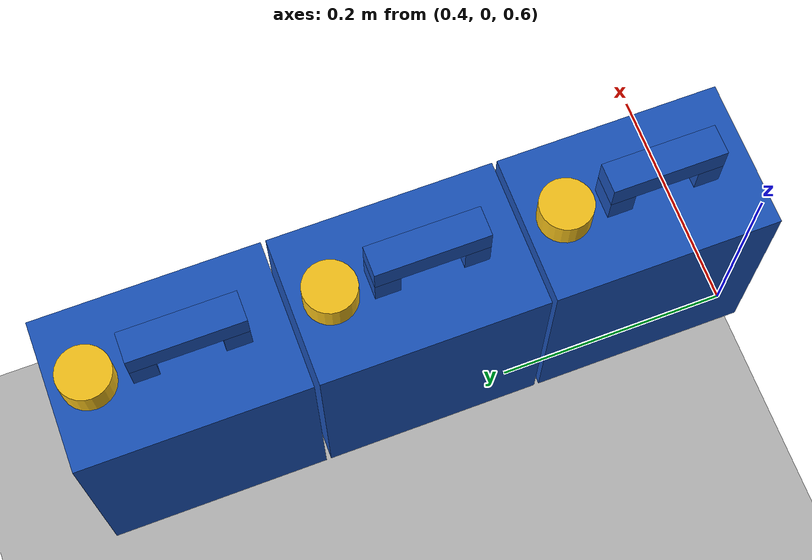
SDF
<sdf version="1.8">
 <world name="moz1_jerrycan">
  <model name="ground_plane">
   <static>true</static>
   <link name="link">
    <collision name="c"><geometry><plane><normal>0 0 1</normal><size>100 100</size></plane></geometry></collision>
    <visual name="v">
     <geometry><plane><normal>0 0 1</normal><size>100 100</size></plane></geometry>
     <material><ambient>0.7 0.7 0.7 1</ambient><diffuse>0.7 0.7 0.7 1</diffuse></material>
    </visual>
   </link>
  </model>
  <model name="jerrycan_left_1">
   <pose>0.4330 0.0920 0.6300 0 0 0</pose>
   <link name="link">
    <inertial>
     <pose>0.0000 0.0000 0.1200 0 0 0</pose>
     <mass>4.200</mass>
     <inertia><ixx>0.03150</ixx><iyy>0.02520</iyy><izz>0.01638</izz><ixy>0</ixy><ixz>0</ixz><iyz>0</iyz></inertia>
    </inertial>
    <visual name="body">
     <pose>0.0000 0.0000 0.0975 0 0 0</pose>
     <geometry><box><size>0.1200 0.1800 0.1950</size></box></geometry>
     <material><ambient>0.10 0.32 0.72 1</ambient><diffuse>0.10 0.32 0.72 1</diffuse></material>
    </visual>
    <collision name="body_c">
     <pose>0.0000 0.0000 0.0975 0 0 0</pose>
     <geometry><box><size>0.1200 0.1800 0.1950</size></box></geometry>
     <surface><friction><ode><mu>0.8</mu><mu2>0.8</mu2></ode></friction></surface>
    </collision>
    <visual name="bar">
     <pose>0.0000 -0.0150 0.2290 0 0 0</pose>
     <geometry><box><size>0.0240 0.0900 0.0220</size></box></geometry>
     <material><ambient>0.10 0.32 0.72 1</ambient><diffuse>0.10 0.32 0.72 1</diffuse></material>
    </visual>
    <visual name="post_a">
     <pose>0.0000 -0.0500 0.2065 0 0 0</pose>
     <geometry><box><size>0.0240 0.0200 0.0230</size></box></geometry>
     <material><ambient>0.10 0.32 0.72 1</ambient><diffuse>0.10 0.32 0.72 1</diffuse></material>
    </visual>
    <visual name="post_b">
     <pose>0.0000 0.0200 0.2065 0 0 0</pose>
     <geometry><box><size>0.0240 0.0200 0.0230</size></box></geometry>
     <material><ambient>0.10 0.32 0.72 1</ambient><diffuse>0.10 0.32 0.72 1</diffuse></material>
    </visual>
    <visual name="cap">
     <pose>0.0000 0.0600 0.2070 0 0 0</pose>
     <geometry><cylinder><radius>0.021</radius><length>0.024</length></cylinder></geometry>
     <material><ambient>0.95 0.75 0.10 1</ambient><diffuse>0.95 0.75 0.10 1</diffuse></material>
    </visual>
   </link>
  </model>
  <model name="jerrycan_left_2">
   <pose>0.4330 0.2760 0.6300 0 0 0</pose>
   <link name="link">
    <inertial>
     <pose>0.0000 0.0000 0.1200 0 0 0</pose>
     <mass>4.200</mass>
     <inertia><ixx>0.03150</ixx><iyy>0.02520</iyy><izz>0.01638</izz><ixy>0</ixy><ixz>0</ixz><iyz>0</iyz></inertia>
    </inertial>
    <visual name="body">
     <pose>0.0000 0.0000 0.0975 0 0 0</pose>
     <geometry><box><size>0.1200 0.1800 0.1950</size></box></geometry>
     <material><ambient>0.10 0.32 0.72 1</ambient><diffuse>0.10 0.32 0.72 1</diffuse></material>
    </visual>
    <collision name="body_c">
     <pose>0.0000 0.0000 0.0975 0 0 0</pose>
     <geometry><box><size>0.1200 0.1800 0.1950</size></box></geometry>
     <surface><friction><ode><mu>0.8</mu><mu2>0.8</mu2></ode></friction></surface>
    </collision>
    <visual name="bar">
     <pose>0.0000 -0.0150 0.2290 0 0 0</pose>
     <geometry><box><size>0.0240 0.0900 0.0220</size></box></geometry>
     <material><ambient>0.10 0.32 0.72 1</ambient><diffuse>0.10 0.32 0.72 1</diffuse></material>
    </visual>
    <visual name="post_a">
     <pose>0.0000 -0.0500 0.2065 0 0 0</pose>
     <geometry><box><size>0.0240 0.0200 0.0230</size></box></geometry>
     <material><ambient>0.10 0.32 0.72 1</ambient><diffuse>0.10 0.32 0.72 1</diffuse></material>
    </visual>
    <visual name="post_b">
     <pose>0.0000 0.0200 0.2065 0 0 0</pose>
     <geometry><box><size>0.0240 0.0200 0.0230</size></box></geometry>
     <material><ambient>0.10 0.32 0.72 1</ambient><diffuse>0.10 0.32 0.72 1</diffuse></material>
    </visual>
    <visual name="cap">
     <pose>0.0000 0.0600 0.2070 0 0 0</pose>
     <geometry><cylinder><radius>0.021</radius><length>0.024</length></cylinder></geometry>
     <material><ambient>0.95 0.75 0.10 1</ambient><diffuse>0.95 0.75 0.10 1</diffuse></material>
    </visual>
   </link>
  </model>
  <model name="jerrycan_left_3">
   <pose>0.4330 0.4600 0.6300 0 0 0</pose>
   <link name="link">
    <inertial>
     <pose>0.0000 0.0000 0.1200 0 0 0</pose>
     <mass>4.200</mass>
     <inertia><ixx>0.03150</ixx><iyy>0.02520</iyy><izz>0.01638</izz><ixy>0</ixy><ixz>0</ixz><iyz>0</iyz></inertia>
    </inertial>
    <visual name="body">
     <pose>0.0000 0.0000 0.0975 0 0 0</pose>
     <geometry><box><size>0.1200 0.1800 0.1950</size></box></geometry>
     <material><ambient>0.10 0.32 0.72 1</ambient><diffuse>0.10 0.32 0.72 1</diffuse></material>
    </visual>
    <collision name="body_c">
     <pose>0.0000 0.0000 0.0975 0 0 0</pose>
     <geometry><box><size>0.1200 0.1800 0.1950</size></box></geometry>
     <surface><friction><ode><mu>0.8</mu><mu2>0.8</mu2></ode></friction></surface>
    </collision>
    <visual name="bar">
     <pose>0.0000 -0.0150 0.2290 0 0 0</pose>
     <geometry><box><size>0.0240 0.0900 0.0220</size></box></geometry>
     <material><ambient>0.10 0.32 0.72 1</ambient><diffuse>0.10 0.32 0.72 1</diffuse></material>
    </visual>
    <visual name="post_a">
     <pose>0.0000 -0.0500 0.2065 0 0 0</pose>
     <geometry><box><size>0.0240 0.0200 0.0230</size></box></geometry>
     <material><ambient>0.10 0.32 0.72 1</ambient><diffuse>0.10 0.32 0.72 1</diffuse></material>
    </visual>
    <visual name="post_b">
     <pose>0.0000 0.0200 0.2065 0 0 0</pose>
     <geometry><box><size>0.0240 0.0200 0.0230</size></box></geometry>
     <material><ambient>0.10 0.32 0.72 1</ambient><diffuse>0.10 0.32 0.72 1</diffuse></material>
    </visual>
    <visual name="cap">
     <pose>0.0000 0.0600 0.2070 0 0 0</pose>
     <geometry><cylinder><radius>0.021</radius><length>0.024</length></cylinder></geometry>
     <material><ambient>0.95 0.75 0.10 1</ambient><diffuse>0.95 0.75 0.10 1</diffuse></material>
    </visual>
   </link>
  </model>
 </world>
</sdf>
